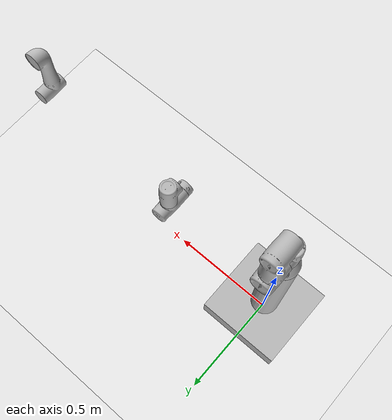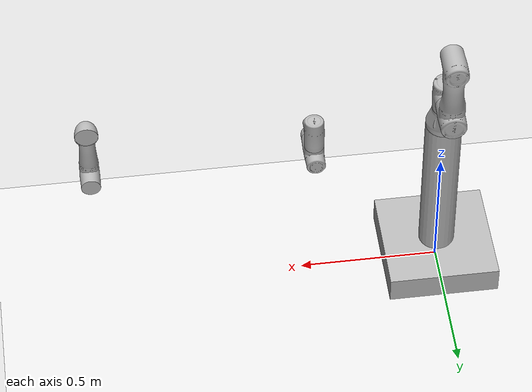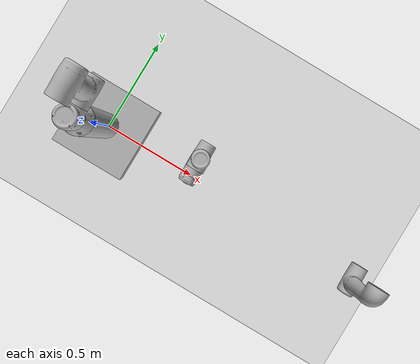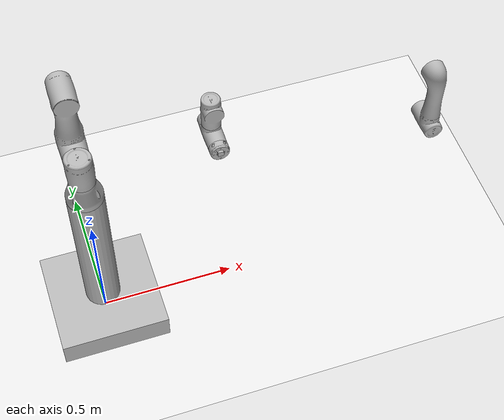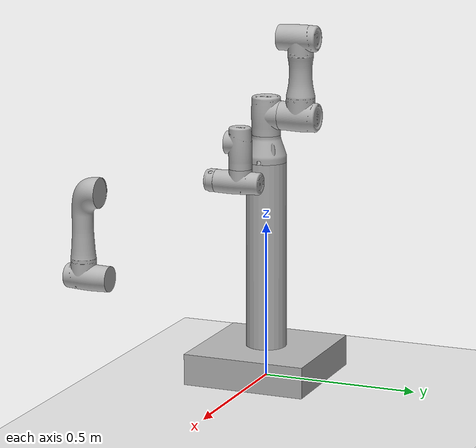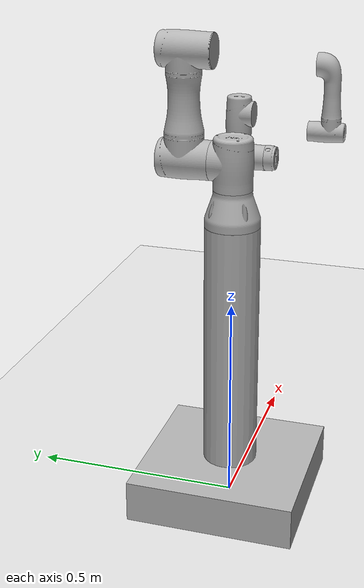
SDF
<sdf version="1.6">
 <world name="default">
  <light name="sun" type="directional">
   <pose>0 0 10 0 -0 0</pose>
   <diffuse>0.8 0.8 0.8 1</diffuse>
   <specular>0.2 0.2 0.2 1</specular>
   <attenuation>
    <range>1000</range>
    <constant>0.9</constant>
    <linear>0.01</linear>
    <quadratic>0.001</quadratic>
   </attenuation>
   <direction>-0.5 0.1 -0.9</direction>
  </light>
  <model name="ground_plane">
   <static>1</static>
   <link name="link">
    <collision name="collision">
     <geometry><plane><normal>0 0 1</normal><size>100 100</size></plane></geometry>
     <surface>
      <contact><collide_bitmask>65535</collide_bitmask></contact>
      <friction><ode><mu>100</mu><mu2>50</mu2></ode></friction>
     </surface>
    </collision>
    <visual name="visual">
     <cast_shadows>0</cast_shadows>
     <geometry><plane><normal>0 0 1</normal><size>100 100</size></plane></geometry>
     <material>
      <script><uri>file://media/materials/scripts/gazebo.material</uri><name>Gazebo/White</name></script>
     </material>
    </visual>
   </link>
  </model>
  <model name="box">
   <link name="link">
    <collision name="collision"><geometry><sphere><radius>0.05</radius></sphere></geometry></collision>
    <visual name="visual">
     <geometry><sphere><radius>0.05</radius></sphere></geometry>
     <material>
      <script><name>Gazebo/Blue</name><uri>file://media/materials/scripts/gazebo.material</uri></script>
     </material>
    </visual>
    <gravity>0</gravity>
   </link>
   <plugin name="ball_animation_plugin" filename="libball_animation_plugin.so"/>
  </model>
  <gravity>0 0 -9.8</gravity>
  <magnetic_field>6e-06 2.3e-05 -4.2e-05</magnetic_field>
  <atmosphere type="adiabatic"/>
  <physics name="default_physics" default="0" type="ode">
   <max_step_size>0.001</max_step_size>
   <real_time_factor>1</real_time_factor>
   <real_time_update_rate>1000</real_time_update_rate>
  </physics>
  <scene><ambient>0.4 0.4 0.4 1</ambient><background>0.7 0.7 0.7 1</background><shadows>1</shadows></scene>
  <audio><device>default</device></audio>
  <spherical_coordinates>
   <surface_model>EARTH_WGS84</surface_model>
   <latitude_deg>0</latitude_deg>
   <longitude_deg>0</longitude_deg>
   <elevation>0</elevation>
   <heading_deg>0</heading_deg>
  </spherical_coordinates>
  <model name="jaka_zu3">
   <plugin name="velocity_controller_ros" filename="libvelocity_controller_ros.so"/>
   <link name="base_footprint">
    <inertial>
     <pose>0 0 0.153621 0 -0 0</pose>
     <mass>70.4639</mass>
     <inertia>
      <ixx>3.21951</ixx>
      <ixy>-1.0227e-07</ixy>
      <ixz>-1.0724e-05</ixz>
      <iyy>3.84452</iyy>
      <iyz>3.7859e-07</iyz>
      <izz>4.93416</izz>
     </inertia>
    </inertial>
    <collision name="base_footprint_fixed_joint_lump__plain_link_collision">
     <pose>0 0 0.05 0 -0 0</pose>
     <geometry><box><size>0.4 0.4 0.1</size></box></geometry>
    </collision>
    <collision name="base_footprint_fixed_joint_lump__cylinder_link_collision_1">
     <pose>0 0 0.4 0 -0 0</pose>
     <geometry><cylinder><length>0.6</length><radius>0.065</radius></cylinder></geometry>
    </collision>
    <visual name="base_footprint_visual">
     <geometry><sphere><radius>0.001</radius></sphere></geometry>
     <material><script><uri>__default__</uri><name>__default__</name></script></material>
    </visual>
    <visual name="base_footprint_fixed_joint_lump__plain_link_visual_1">
     <pose>0 0 0.05 0 -0 0</pose>
     <geometry><box><size>0.4 0.4 0.1</size></box></geometry>
     <material><script><uri>__default__</uri><name>__default__</name></script></material>
    </visual>
    <visual name="base_footprint_fixed_joint_lump__cylinder_link_visual_2">
     <pose>0 0 0.4 0 -0 0</pose>
     <geometry><cylinder><length>0.6</length><radius>0.065</radius></cylinder></geometry>
    </visual>
   </link>
   <link name="Link_0">
    <pose>0 0 0.7 0 -0 0</pose>
    <inertial>
     <mass>0.46393</mass>
     <inertia>
      <ixx>0.00064494</ixx>
      <ixy>-1.0227E-07</ixy>
      <ixz>-1.0724E-05</ixz>
      <iyy>0.00065157</iyy>
      <iyz>3.7859E-07</iyz>
      <izz>0.00083278</izz>
     </inertia>
    </inertial>
    <collision name="Link_0_collision">
     <pose>0 0 0.7 0 -0 0</pose>
     <geometry>
      <mesh><scale>1 1 1</scale><uri>/home/axin/jaka_ws/src/jaka_zu3_myurdf/meshes/collision/Link_0.STL</uri></mesh>
     </geometry>
    </collision>
    <visual name="Link_0_visual">
     <geometry>
      <mesh><scale>1 1 1</scale><uri>/home/axin/jaka_ws/src/jaka_zu3_myurdf/meshes/visual/Link_0.dae</uri></mesh>
     </geometry>
     <material><script><uri>__default__</uri><name>__default__</name></script></material>
    </visual>
   </link>
   <joint name="world_joint" type="fixed"><child>base_footprint</child><parent>world</parent></joint>
   <link name="Link_1">
    <pose>0 0 0.85055 0 -0 0</pose>
    <inertial>
     <mass>0.88365</mass>
     <inertia>
      <ixx>0.0015634</ixx>
      <ixy>1.5495e-08</ixy>
      <ixz>5.6443e-09</ixz>
      <iyy>0.0015047</iyy>
      <iyz>-9.0168e-06</iyz>
      <izz>0.0010527</izz>
     </inertia>
    </inertial>
    <collision name="Link_1_collision">
     <geometry>
      <mesh><scale>1 1 1</scale><uri>/home/axin/jaka_ws/src/jaka_zu3_myurdf/meshes/collision/Link_1.STL</uri></mesh>
     </geometry>
    </collision>
    <visual name="Link_1_visual">
     <geometry>
      <mesh><scale>1 1 1</scale><uri>/home/axin/jaka_ws/src/jaka_zu3_myurdf/meshes/visual/Link_1.dae</uri></mesh>
     </geometry>
     <material><script><uri>__default__</uri><name>__default__</name></script></material>
    </visual>
   </link>
   <joint name="joint_0" type="fixed">
    <child>Link_0</child>
    <parent>base_footprint</parent>
    <axis><use_parent_model_frame>1</use_parent_model_frame></axis>
   </joint>
   <joint name="joint_1" type="revolute">
    <child>Link_1</child>
    <parent>Link_0</parent>
    <axis>
     <xyz>0 0 1</xyz>
     <limit><lower>-4.71</lower><upper>4.71</upper><effort>300</effort><velocity>3.14</velocity></limit>
     <dynamics>
      <damping>50</damping>
      <friction>1</friction>
      <spring_reference>0</spring_reference>
      <spring_stiffness>0</spring_stiffness>
     </dynamics>
     <use_parent_model_frame>1</use_parent_model_frame>
    </axis>
   </joint>
   <link name="Link_2">
    <pose>0 0 0.85055 1.5708 -1.5708 0</pose>
    <inertial>
     <pose>0.114 -1e-06 -0.11162 0 -0 0</pose>
     <mass>2.3202</mass>
     <inertia><ixx>1</ixx><ixy>0</ixy><ixz>0</ixz><iyy>1</iyy><iyz>0</iyz><izz>1</izz></inertia>
    </inertial>
    <collision name="Link_2_collision">
     <geometry>
      <mesh><scale>1 1 1</scale><uri>/home/axin/jaka_ws/src/jaka_zu3_myurdf/meshes/collision/Link_2.STL</uri></mesh>
     </geometry>
    </collision>
    <visual name="Link_2_visual">
     <geometry>
      <mesh><scale>1 1 1</scale><uri>/home/axin/jaka_ws/src/jaka_zu3_myurdf/meshes/visual/Link_2.dae</uri></mesh>
     </geometry>
     <material><script><uri>__default__</uri><name>__default__</name></script></material>
    </visual>
   </link>
   <joint name="joint_2" type="revolute">
    <child>Link_2</child>
    <parent>Link_1</parent>
    <axis>
     <xyz>0 -1 -4e-06</xyz>
     <limit><lower>-1.48</lower><upper>4.62</upper><effort>300</effort><velocity>3.14</velocity></limit>
     <dynamics>
      <damping>50</damping>
      <friction>1</friction>
      <spring_reference>0</spring_reference>
      <spring_stiffness>0</spring_stiffness>
     </dynamics>
     <use_parent_model_frame>1</use_parent_model_frame>
    </axis>
   </joint>
   <link name="Link_3">
    <pose>1.246 0 0.85055 1.5708 1.5708 0</pose>
    <inertial>
     <mass>1.2034</mass>
     <inertia><ixx>1</ixx><ixy>0</ixy><ixz>0</ixz><iyy>1</iyy><iyz>0</iyz><izz>1</izz></inertia>
    </inertial>
    <collision name="Link_3_collision">
     <geometry>
      <mesh><scale>1 1 1</scale><uri>/home/axin/jaka_ws/src/jaka_zu3_myurdf/meshes/collision/Link_3.STL</uri></mesh>
     </geometry>
    </collision>
    <visual name="Link_3_visual">
     <geometry>
      <mesh><scale>1 1 1</scale><uri>/home/axin/jaka_ws/src/jaka_zu3_myurdf/meshes/visual/Link_3.dae</uri></mesh>
     </geometry>
     <material><script><uri>__default__</uri><name>__default__</name></script></material>
    </visual>
   </link>
   <joint name="joint_3" type="revolute">
    <child>Link_3</child>
    <parent>Link_2</parent>
    <axis>
     <xyz>0 -1 -4e-06</xyz>
     <limit><lower>-3.05</lower><upper>3.05</upper><effort>330</effort><velocity>3.14</velocity></limit>
     <dynamics>
      <damping>50</damping>
      <friction>1</friction>
      <spring_reference>0</spring_reference>
      <spring_stiffness>0</spring_stiffness>
     </dynamics>
     <use_parent_model_frame>1</use_parent_model_frame>
    </axis>
   </joint>
   <link name="Link_4">
    <pose>0.474 0.113 0.85055 1.5708 -0 0</pose>
    <inertial>
     <pose>0 -0.014051 0.003161 0 -0 0</pose>
     <mass>0.49334</mass>
     <inertia><ixx>1</ixx><ixy>0</ixy><ixz>0</ixz><iyy>1</iyy><iyz>0</iyz><izz>1</izz></inertia>
    </inertial>
    <collision name="Link_4_collision">
     <geometry>
      <mesh><scale>1 1 1</scale><uri>/home/axin/jaka_ws/src/jaka_zu3_myurdf/meshes/collision/Link_4.STL</uri></mesh>
     </geometry>
    </collision>
    <visual name="Link_4_visual">
     <geometry>
      <mesh><scale>1 1 1</scale><uri>/home/axin/jaka_ws/src/jaka_zu3_myurdf/meshes/visual/Link_4.dae</uri></mesh>
     </geometry>
     <material><script><uri>__default__</uri><name>__default__</name></script></material>
    </visual>
   </link>
   <joint name="joint_4" type="revolute">
    <child>Link_4</child>
    <parent>Link_3</parent>
    <axis>
     <xyz>0 -1 -4e-06</xyz>
     <limit><lower>-1.48</lower><upper>4.62</upper><effort>330</effort><velocity>3.14</velocity></limit>
     <dynamics>
      <damping>50</damping>
      <friction>1</friction>
      <spring_reference>0</spring_reference>
      <spring_stiffness>0</spring_stiffness>
     </dynamics>
     <use_parent_model_frame>1</use_parent_model_frame>
    </axis>
   </joint>
   <link name="Link_5">
    <pose>0.474 0.113 0.7338 -3.14159 -0 0</pose>
    <inertial>
     <pose>0 0.006864 -0.002158 0 -0 0</pose>
     <mass>0.55082</mass>
     <inertia><ixx>1</ixx><ixy>0</ixy><ixz>0</ixz><iyy>1</iyy><iyz>0</iyz><izz>1</izz></inertia>
    </inertial>
    <collision name="Link_5_collision">
     <geometry>
      <mesh><scale>1 1 1</scale><uri>/home/axin/jaka_ws/src/jaka_zu3_myurdf/meshes/collision/Link_5.STL</uri></mesh>
     </geometry>
    </collision>
    <visual name="Link_5_visual">
     <geometry>
      <mesh><scale>1 1 1</scale><uri>/home/axin/jaka_ws/src/jaka_zu3_myurdf/meshes/visual/Link_5.dae</uri></mesh>
     </geometry>
     <material><script><uri>__default__</uri><name>__default__</name></script></material>
    </visual>
   </link>
   <joint name="joint_5" type="revolute">
    <child>Link_5</child>
    <parent>Link_4</parent>
    <axis>
     <xyz>0 7e-06 -1</xyz>
     <limit><lower>-4.71</lower><upper>4.71</upper><effort>330</effort><velocity>3.83</velocity></limit>
     <dynamics>
      <damping>50</damping>
      <friction>1</friction>
      <spring_reference>0</spring_reference>
      <spring_stiffness>0</spring_stiffness>
     </dynamics>
     <use_parent_model_frame>1</use_parent_model_frame>
    </axis>
   </joint>
   <link name="Link_6">
    <pose>0.474 0.0145 0.7338 1.5708 -0 0</pose>
    <inertial>
     <pose>5.3e-05 -0.000101 -0.009103 0 -0 0</pose>
     <mass>0.094894</mass>
     <inertia>
      <ixx>1</ixx>
      <ixy>5.29344e-14</ixy>
      <ixz>4.78539e-12</ixz>
      <iyy>1</iyy>
      <iyz>-9.16626e-12</iyz>
      <izz>1</izz>
     </inertia>
    </inertial>
    <collision name="Link_6_collision">
     <geometry>
      <mesh><scale>1 1 1</scale><uri>/home/axin/jaka_ws/src/jaka_zu3_myurdf/meshes/collision/Link_6.STL</uri></mesh>
     </geometry>
    </collision>
    <collision name="Link_6_fixed_joint_lump__camera_link_collision_1">
     <geometry><box><size>0.02 0.02 0.02</size></box></geometry>
    </collision>
    <collision name="Link_6_fixed_joint_lump__ee_link_collision_2">
     <pose>-0.01 0 0 0 -0 0</pose>
     <geometry><box><size>0.01 0.01 0.01</size></box></geometry>
    </collision>
    <visual name="Link_6_visual">
     <geometry>
      <mesh><scale>1 1 1</scale><uri>/home/axin/jaka_ws/src/jaka_zu3_myurdf/meshes/visual/Link_6.dae</uri></mesh>
     </geometry>
     <material><script><uri>__default__</uri><name>__default__</name></script></material>
    </visual>
    <visual name="Link_6_fixed_joint_lump__camera_link_visual_1">
     <geometry><box><size>0.02 0.02 0.02</size></box></geometry>
     <material><script><uri>__default__</uri><name>__default__</name></script></material>
    </visual>
    <sensor name="camera_node" type="depth">
     <always_on>1</always_on>
     <update_rate>30</update_rate>
     <camera name="__default__">
      <horizontal_fov>1.0472</horizontal_fov>
      <image><width>640</width><height>480</height></image>
      <clip><near>0.1</near><far>100</far></clip>
     </camera>
     <plugin name="kinect_camera_controller" filename="libgazebo_ros_openni_kinect.so">
      <cameraName>camera</cameraName>
      <alwaysOn>true</alwaysOn>
      <updateRate>20</updateRate>
      <imageTopicName>rgb/image_raw</imageTopicName>
      <depthImageTopicName>depth/image_raw</depthImageTopicName>
      <pointCloudTopicName>depth/points</pointCloudTopicName>
      <cameraInfoTopicName>rgb/camera_info</cameraInfoTopicName>
      <depthImageCameraInfoTopicName>depth/camera_info</depthImageCameraInfoTopicName>
      <frameName>camera_depth_optical_frame</frameName>
      <baseline>0.1</baseline>
      <distortion_k1>0.0</distortion_k1>
      <distortion_k2>0.0</distortion_k2>
      <distortion_k3>0.0</distortion_k3>
      <distortion_t1>0.0</distortion_t1>
      <distortion_t2>0.0</distortion_t2>
      <pointCloudCutoff>0.1</pointCloudCutoff>
      <robotNamespace>/</robotNamespace>
     </plugin>
     <pose>0 0 0 0 -1.570795 0</pose>
    </sensor>
   </link>
   <joint name="joint_6" type="revolute">
    <child>Link_6</child>
    <parent>Link_5</parent>
    <axis>
     <xyz>0 1 4e-06</xyz>
     <limit><lower>-6.28318</lower><upper>6.28318</upper><effort>330</effort><velocity>3.14</velocity></limit>
     <dynamics>
      <damping>50</damping>
      <friction>1</friction>
      <spring_reference>0</spring_reference>
      <spring_stiffness>0</spring_stiffness>
     </dynamics>
     <use_parent_model_frame>1</use_parent_model_frame>
    </axis>
   </joint>
   <static>0</static>
   <plugin name="gazebo_ros_control" filename="libgazebo_ros_control.so">
    <robotNamespace>/jaka_zu3</robotNamespace>
   </plugin>
  </model>
 </world>
</sdf>
